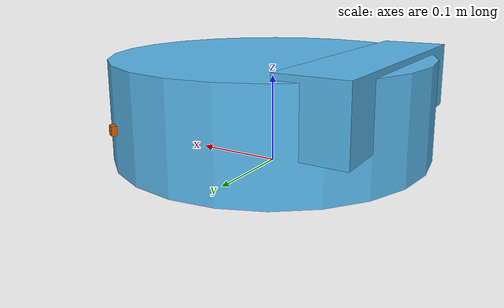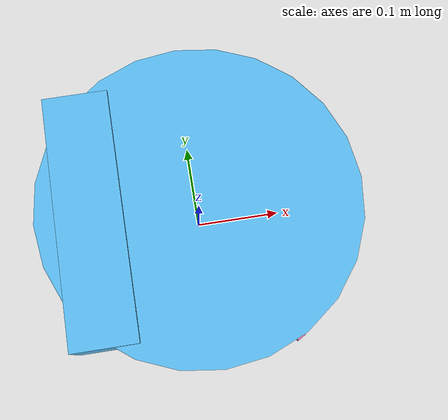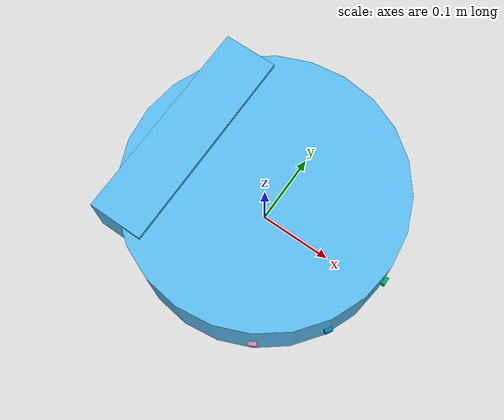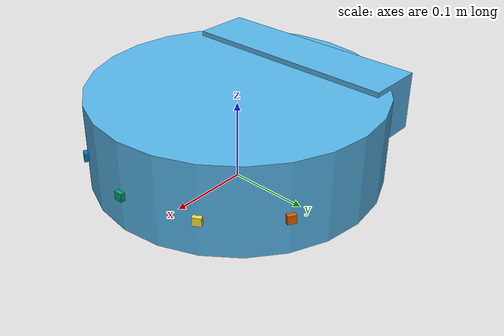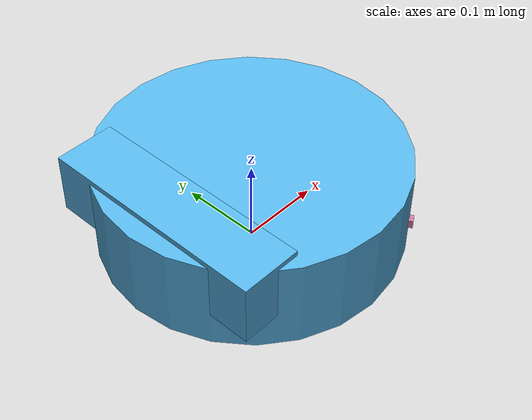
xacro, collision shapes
<?xml version="1.0"?>
<robot name="kobuki_standalone"
	xmlns:sensor="http://playerstage.sourceforge.net/gazebo/xmlschema/#sensor"
	xmlns:controller="http://playerstage.sourceforge.net/gazebo/xmlschema/#controller"
	xmlns:interface="http://playerstage.sourceforge.net/gazebo/xmlschema/#interface"
	xmlns:xacro="http://ros.org/wiki/xacro">
	<!-- Defines the kobuki component tag. -->
	<xacro:include filename="$(find custom_description)/description/kobuki/urdf/kobuki.urdf.xacro" />
	<kobuki/>
	<xacro:include filename="$(find custom_description)/description/range_sensor.urdf.xacro" />

	<!-- front sensor -->
	<range_sensor name="front_sonar" parent="base_link" ros_topic="/front_range" update_rate="50" min_range="0.020" max_range="2" field_of_view="${30*3.1415926/180}" ray_count="1">
		<origin xyz="0.178 0.0 0.05" rpy="0 0 0" />
	</range_sensor>

	<!-- left sensor -->
	<range_sensor name="front_left_sonar" parent="base_link" ros_topic="/front_left_range" update_rate="50" min_range="0.02" max_range="2" field_of_view="${30*3.1415926/180}" ray_count="1">
		<origin xyz="0.154 0.089 0.05" rpy="0 0 ${30*3.1415926/180}" />
	</range_sensor>
	<!-- right sensor -->
	<range_sensor name="front_right_sonar" parent="base_link" ros_topic="/front_right_range" update_rate="50" min_range="0.020" max_range="2" field_of_view="${30*3.1415926/180}" ray_count="1">
		<origin xyz="0.154 -0.089 0.05" rpy="0 0 ${-30*3.1415926/180}" />
	</range_sensor>
	<range_sensor name="left_sonar" parent="base_link" ros_topic="/left_range" update_rate="50" min_range="0.02" max_range="2" field_of_view="${30*3.1415926/180}" ray_count="1">
		<origin xyz="0.089 0.154 0.05" rpy="0 0 ${60*3.1415926/180}" />
	</range_sensor>
	<range_sensor name="right_sonar" parent="base_link" ros_topic="/right_range" update_rate="50" min_range="0.02" max_range="2" field_of_view="${30*3.1415926/180}" ray_count="1">
		<origin xyz="0.089 -0.154 0.05" rpy="0 0 ${-60*3.1415926/180}" />
	</range_sensor>

    <xacro:include filename="$(find custom_description)/description/kinect.urdf.xacro" />
	<!--  camera -->
	<sensor_kinect parent="base_link">
		<origin xyz="-0.087 -0.0125 0.1" rpy="0 0 0" />
	</sensor_kinect>

</robot>

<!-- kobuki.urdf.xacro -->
<robot name="kobuki" xmlns:xacro="http://ros.org/wiki/xacro">
        <xacro:include filename="$(find custom_description)/description/common_properties.urdf.xacro" />
        <xacro:include filename="$(find custom_description)/description/kobuki/urdf/kobuki_gazebo.urdf.xacro" />
	<!-- Kobuki -->
	<macro name="kobuki">
		<link name="base_footprint" />
		<joint name="base_joint" type="fixed">
			<origin xyz="0 0 0.0102" rpy="0 0 0" />
			<parent link="base_footprint" />
			<child link="base_link" />
		</joint>
		<link name="base_link">
			<visual>
				<geometry>
					<!-- new mesh -->
					<mesh filename="package://kobuki_description/meshes/main_body.dae" />
				</geometry>
				<origin xyz="0.001 0 0.05199" rpy="0 0 0" />
			</visual>
			<collision>
				<geometry>
					<cylinder length="0.10938" radius="0.178" />
				</geometry>
				<origin xyz="0.0 0 0.05949" rpy="0 0 0" />
			</collision>
			<inertial>
				<!-- COM experimentally determined -->
				<origin xyz="0.01 0 0" />
				<mass value="2.4" />
				<!-- 2.4/2.6 kg for small/big battery pack -->
				<inertia ixx="0.019995" ixy="0.0" ixz="0.0" iyy="0.019995" iyz="0.0" izz="0.03675" />
			</inertial>
		</link>
		<joint name="wheel_left_joint" type="continuous">
			<parent link="base_link" />
			<child link="wheel_left_link" />
			<origin xyz="0.00 ${0.23/2} 0.0250" rpy="${-M_PI/2} 0 0" />
			<axis xyz="0 0 1" />
		</joint>
		<link name="wheel_left_link">
			<visual>
				<geometry>
					<mesh filename="package://kobuki_description/meshes/wheel.dae" />
				</geometry>
				<origin xyz="0 0 0" rpy="0 0 0" />
			</visual>
			<collision>
				<geometry>
					<cylinder length="0.0206" radius="0.0352" />
				</geometry>
				<origin rpy="0 0 0" xyz="0 0 0" />
			</collision>
			<inertial>
				<mass value="0.01" />
				<origin xyz="0 0 0" />
				<inertia ixx="0.001" ixy="0.0" ixz="0.0" iyy="0.001" iyz="0.0" izz="0.001" />
			</inertial>
		</link>
		<joint name="wheel_right_joint" type="continuous">
			<parent link="base_link" />
			<child link="wheel_right_link" />
			<origin xyz="0.00 -${0.23/2} 0.0250" rpy="${-M_PI/2} 0 0" />
			<axis xyz="0 0 1" />
		</joint>
		<link name="wheel_right_link">
			<visual>
				<geometry>
					<mesh filename="package://kobuki_description/meshes/wheel.dae" />
				</geometry>
				<origin xyz="0 0 0" rpy="0 0 0" />
			</visual>
			<collision>
				<geometry>
					<cylinder length="0.0206" radius="0.0350" />
				</geometry>
				<origin rpy="0 0 0" xyz="0 0 0" />
			</collision>
			<inertial>
				<mass value="0.01" />
				<origin xyz="0 0 0" />
				<inertia ixx="0.001" ixy="0.0" ixz="0.0" iyy="0.001" iyz="0.0" izz="0.001" />
			</inertial>
		</link>
		<joint name="caster_front_joint" type="fixed">
			<parent link="base_link" />
			<child link="caster_front_link" />
			<origin xyz="0.115 0.0 0.007" rpy="${-M_PI/2} 0 0" />
		</joint>
		<link name="caster_front_link">
			<collision>
				<geometry>
					<cylinder length="0.0176" radius="0.017" />
				</geometry>
				<origin rpy="0 0 0" xyz="0 0 0" />
			</collision>
			<inertial>
				<mass value="0.01" />
				<origin xyz="0 0 0" />
				<inertia ixx="0.001" ixy="0.0" ixz="0.0" iyy="0.001" iyz="0.0" izz="0.001" />
			</inertial>
		</link>
		<joint name="caster_back_joint" type="fixed">
			<parent link="base_link" />
			<child link="caster_back_link" />
			<origin xyz="-0.135 0.0 0.009" rpy="${-M_PI/2} 0 0" />
		</joint>
		<link name="caster_back_link">
			<collision>
				<geometry>
					<cylinder length="0.0176" radius="0.017" />
				</geometry>
				<origin rpy="0 0 0" xyz="0 0 0" />
			</collision>
			<inertial>
				<mass value="0.01" />
				<origin xyz="0 0 0" />
				<inertia ixx="0.001" ixy="0.0" ixz="0.0" iyy="0.001" iyz="0.0" izz="0.001" />
			</inertial>
		</link>
		<!-- Kobuki's sensors -->
		<joint name="gyro_joint" type="fixed">
			<axis xyz="0 1 0" />
			<origin xyz="0.056 0.062 0.0202" rpy="0 0 0" />
			<parent link="base_link" />
			<child link="gyro_link" />
		</joint>
		<link name="gyro_link">
			<inertial>
				<mass value="0.001" />
				<origin xyz="0 0 0" rpy="0 0 0" />
				<inertia ixx="0.0001" ixy="0" ixz="0" iyy="0.000001" iyz="0" izz="0.0001" />
			</inertial>
		</link>
		<joint name="cliff_sensor_left_joint" type="fixed">
			<origin xyz="0.08734 0.13601 0.0214" rpy="0 ${M_PI/2} 0" />
			<parent link="base_link" />
			<child link="cliff_sensor_left_link" />
		</joint>
		<link name="cliff_sensor_left_link">
			<inertial>
				<mass value="0.0001" />
				<origin xyz="0 0 0" />
				<inertia ixx="0.0001" ixy="0.0" ixz="0.0" iyy="0.0001" iyz="0.0" izz="0.0001" />
			</inertial>
		</link>
		<joint name="cliff_sensor_right_joint" type="fixed">
			<origin xyz="0.085 -0.13601 0.0214" rpy="0 ${M_PI/2} 0" />
			<parent link="base_link" />
			<child link="cliff_sensor_right_link" />
		</joint>
		<link name="cliff_sensor_right_link">
			<inertial>
				<mass value="0.0001" />
				<origin xyz="0 0 0" />
				<inertia ixx="0.0001" ixy="0.0" ixz="0.0" iyy="0.0001" iyz="0.0" izz="0.0001" />
			</inertial>
		</link>
		<joint name="cliff_sensor_front_joint" type="fixed">
			<origin xyz="0.156 0.00 0.0214" rpy="0 ${M_PI/2} 0" />
			<parent link="base_link" />
			<child link="cliff_sensor_front_link" />
		</joint>
		<link name="cliff_sensor_front_link">
			<inertial>
				<mass value="0.0001" />
				<origin xyz="0 0 0" />
				<inertia ixx="0.0001" ixy="0.0" ixz="0.0" iyy="0.0001" iyz="0.0" izz="0.0001" />
			</inertial>
		</link>
		<!-- Kobuki Gazebo simulation details -->
		<kobuki_sim />
	</macro>
</robot>

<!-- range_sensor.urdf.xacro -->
<robot xmlns:xacro="http://www.ros.org/wiki/xacro">
  <xacro:macro name="range_sensor" params="name parent *origin ros_topic update_rate min_range max_range field_of_view ray_count type:=ultrasound">
    <joint name="${name}_joint" type="fixed">
      <xacro:insert_block name="origin" />
      <parent link="${parent}"/>
      <child link="${name}_link"/>
    </joint>

    <link name="${name}_link">
      <inertial>
        <mass value="0.001" />
        <origin xyz="0 0 0" rpy="0 0 0" />
        <inertia ixx="0.000000017" ixy="0" ixz="0" iyy="0.000000017" iyz="0" izz="0.000000017" />
      </inertial>
      <visual>
        <origin xyz="0 0 0" rpy="0 0 0" />
        <geometry>
          <box size="0.01 0.01 0.01" />
        </geometry>
      </visual>
      <collision>
        <origin xyz="0 0 0" rpy="0 0 0" />
        <geometry>
          <box size="0.01 0.01 0.01" />
        </geometry>
      </collision>
    </link>

    <gazebo reference="${name}_link">
      <sensor type="ray" name="${name}">
        <always_on>true</always_on>
        <update_rate>${update_rate}</update_rate>
        <pose>0 0 0 0 0 0</pose>
        <visualize>false</visualize>
        <ray>
          <scan>
            <horizontal>
              <samples>${ray_count}</samples>
              <resolution>1</resolution>
              <min_angle>-${field_of_view/2}</min_angle>
              <max_angle> ${field_of_view/2}</max_angle>
            </horizontal>
          </scan>
          <range>
            <min>${min_range}</min>
            <max>${max_range}</max>
            <resolution>0.01</resolution>
          </range>
        </ray>

        <plugin name="gazebo_ros_${name}_controller" filename="libgazebo_ros_range.so">
          <fov>${field_of_view}</fov>
          <updateRate>${update_rate}</updateRate>
          <gaussianNoise>0.01</gaussianNoise>
          <topicName>${ros_topic}</topicName>
          <frameName>${name}_link</frameName>
          <radiation>${type}</radiation>
        </plugin>
      </sensor>
    </gazebo>
  </xacro:macro>
</robot>

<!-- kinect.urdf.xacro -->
<robot
  xmlns:xacro="http://ros.org/wiki/xacro">
  <xacro:include filename="$(find custom_description)/description/common_properties.urdf.xacro" />
  <xacro:property name="kinect_cam_py" value="-0.0125"/>
  <!-- Parameterised in part by the values in turtlebot_properties.urdf.xacro -->
  <xacro:macro name="sensor_kinect" params="parent *origin">
    <joint name="camera_rgb_joint" type="fixed">
      <xacro:insert_block name="origin" />
      <parent link="${parent}"/>
      <child link="camera_rgb_frame" />
    </joint>
    <link name="camera_rgb_frame"/>
    <joint name="camera_rgb_optical_joint" type="fixed">
      <origin xyz="0 0 0" rpy="${-M_PI/2} 0 ${-M_PI/2}" />
      <parent link="camera_rgb_frame" />
      <child link="camera_rgb_optical_frame" />
    </joint>
    <link name="camera_rgb_optical_frame"/>
    <joint name="camera_joint" type="fixed">
      <origin xyz="-0.031 ${-kinect_cam_py} -0.016" rpy="0 0 0"/>
      <parent link="camera_rgb_frame"/>
      <child link="camera_link"/>
    </joint>
    <link name="camera_link">
      <visual>
        <origin xyz="0 0 0" rpy="0 0 ${M_PI/2}"/>
        <geometry>
          <mesh filename="package://custom_description/description/meshes/sensors/kinect.dae"/>
        </geometry>
      </visual>
      <collision>
        <origin xyz="0.0 0.0 0.0" rpy="0 0 0"/>
        <geometry>
          <box size="0.07271 0.27794 0.073"/>
        </geometry>
      </collision>
      <inertial>
        <mass value="0.564" />
        <origin xyz="0 0 0" />
        <inertia ixx="0.003881243" ixy="0.0" ixz="0.0" iyy="0.000498940" iyz="0.0" izz="0.003879257" />
      </inertial>
    </link>
    <joint name="camera_depth_joint" type="fixed">
      <origin xyz="0 ${2 * -kinect_cam_py} 0" rpy="0 0 0" />
      <parent link="camera_rgb_frame" />
      <child link="camera_depth_frame" />
    </joint>
    <link name="camera_depth_frame"/>
    <joint name="camera_depth_optical_joint" type="fixed">
      <origin xyz="0 0 0" rpy="${-M_PI/2} 0 ${-M_PI/2}" />
      <parent link="camera_depth_frame" />
      <child link="camera_depth_optical_frame" />
    </joint>
    <link name="camera_depth_optical_frame"/>
    <!-- Kinect sensor for simulation -->
    <gazebo reference="camera_link">
      <sensor type="depth" name="camera">
        <always_on>true</always_on>
        <update_rate>20.0</update_rate>
        <camera>
          <horizontal_fov>${60.0*M_PI/180.0}</horizontal_fov>
          <image>
            <format>B8G8R8</format>
            <width>640</width>
            <height>480</height>
          </image>
          <clip>
            <near>0.05</near>
            <far>8.0</far>
          </clip>
        </camera>
        <plugin name="kinect_camera_controller" filename="libgazebo_ros_openni_kinect.so">
          <cameraName>camera</cameraName>
          <alwaysOn>true</alwaysOn>
          <updateRate>10</updateRate>
          <imageTopicName>rgb/image_raw</imageTopicName>
          <depthImageTopicName>depth/image_raw</depthImageTopicName>
          <pointCloudTopicName>depth/points</pointCloudTopicName>
          <cameraInfoTopicName>rgb/camera_info</cameraInfoTopicName>
          <depthImageCameraInfoTopicName>depth/camera_info</depthImageCameraInfoTopicName>
          <frameName>camera_depth_optical_frame</frameName>
          <baseline>0.1</baseline>
          <distortion_k1>0.0</distortion_k1>
          <distortion_k2>0.0</distortion_k2>
          <distortion_k3>0.0</distortion_k3>
          <distortion_t1>0.0</distortion_t1>
          <distortion_t2>0.0</distortion_t2>
          <pointCloudCutoff>0.4</pointCloudCutoff>
        </plugin>
      </sensor>
    </gazebo>
  </xacro:macro>
</robot>
